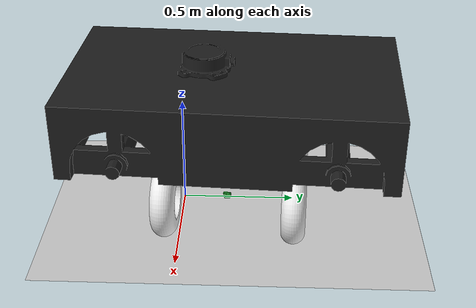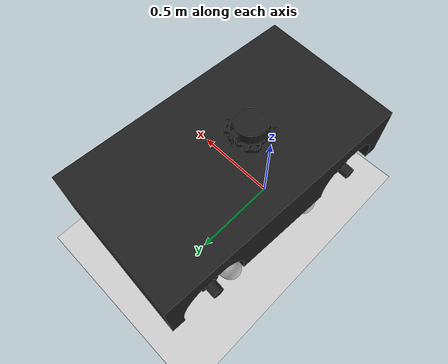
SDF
<sdf version="1.6">
 <world name="default">
  <scene><ambient>0.4 0.4 0.4 1</ambient><background>0.7 0.7 0.7 1</background><shadows>1</shadows></scene>
  <model name="ground_plane">
   <static>1</static>
   <link name="link">
    <collision name="collision">
     <geometry><plane><normal>0 0 1</normal><size>100 100</size></plane></geometry>
     <surface><friction><ode><mu>100</mu><mu2>50</mu2></ode></friction></surface>
    </collision>
    <visual name="visual">
     <cast_shadows>0</cast_shadows>
     <geometry><plane><normal>0 0 1</normal><size>100 100</size></plane></geometry>
     <material>
      <script><uri>file://media/materials/scripts/gazebo.material</uri><name>Gazebo/Grey</name></script>
     </material>
    </visual>
   </link>
  </model>
  <physics name="default_physics" default="0" type="ode">
   <real_time_update_rate>1000</real_time_update_rate>
   <max_step_size>0.001</max_step_size>
   <real_time_factor>1</real_time_factor>
   <ode>
    <solver>
     <type>quick</type>
     <iters>150</iters>
     <precon_iters>0</precon_iters>
     <sor>1.4</sor>
     <use_dynamic_moi_rescaling>1</use_dynamic_moi_rescaling>
    </solver>
    <constraints>
     <cfm>1e-05</cfm>
     <erp>0.2</erp>
     <contact_max_correcting_vel>2000</contact_max_correcting_vel>
     <contact_surface_layer>0.01</contact_surface_layer>
    </constraints>
   </ode>
  </physics>
  <gravity>0 0 -9.8</gravity>
  <magnetic_field>6e-06 2.3e-05 -4.2e-05</magnetic_field>
  <atmosphere type="adiabatic"/>
  <spherical_coordinates>
   <surface_model>EARTH_WGS84</surface_model>
   <latitude_deg>0</latitude_deg>
   <longitude_deg>0</longitude_deg>
   <elevation>0</elevation>
   <heading_deg>0</heading_deg>
  </spherical_coordinates>
  <model name="kepdos">
   <link name="base_link">
    <inertial>
     <pose>0.004374 2.1e-05 -0.021524 0 -0 0</pose>
     <mass>20.8082</mass>
     <inertia>
      <ixx>0.0520942</ixx>
      <ixy>-0.00152807</ixy>
      <ixz>-0.0193073</ixz>
      <iyy>0.0996641</iyy>
      <iyz>-1.8125e-06</iyz>
      <izz>0.104279</izz>
     </inertia>
    </inertial>
    <collision name="base_link_collision">
     <geometry>
      <mesh>
       <scale>1 1 1</scale>
       <uri>/home/kepas/kepdos_robot/src/robot_description/meshes/base_link.STL</uri>
      </mesh>
     </geometry>
    </collision>
    <collision name="base_link_fixed_joint_lump__camera_link_collision_1">
     <pose>0.3121 0 0.00895 0 -0 0</pose>
     <geometry>
      <mesh>
       <scale>1 1 1</scale>
       <uri>/home/kepas/kepdos_robot/src/robot_description/meshes/camera_link.STL</uri>
      </mesh>
     </geometry>
    </collision>
    <collision name="base_link_fixed_joint_lump__imu_link_collision_2">
     <geometry>
      <mesh><scale>1 1 1</scale><uri>/home/kepas/kepdos_robot/src/robot_description/meshes/imu_link.STL</uri></mesh>
     </geometry>
    </collision>
    <collision name="base_link_fixed_joint_lump__kinect_link_collision_3">
     <pose>0.21125 0 0.12827 0 -0 0</pose>
     <geometry>
      <mesh>
       <scale>1 1 1</scale>
       <uri>/home/kepas/kepdos_robot/src/robot_description/meshes/kinect_link.STL</uri>
      </mesh>
     </geometry>
    </collision>
    <collision name="base_link_fixed_joint_lump__lidar_link_collision_4">
     <pose>-0.0445 0 0.16575 0 -0 0</pose>
     <geometry>
      <mesh>
       <scale>1 1 1</scale>
       <uri>/home/kepas/kepdos_robot/src/robot_description/meshes/lidar_link.STL</uri>
      </mesh>
     </geometry>
    </collision>
    <visual name="base_link_visual">
     <geometry>
      <mesh>
       <scale>1 1 1</scale>
       <uri>/home/kepas/kepdos_robot/src/robot_description/meshes/base_link.STL</uri>
      </mesh>
     </geometry>
     <material>
      <script><name>Gazebo/Black</name><uri>file://media/materials/scripts/gazebo.material</uri></script>
     </material>
    </visual>
    <visual name="base_link_fixed_joint_lump__camera_link_visual_1">
     <pose>0.3121 0 0.00895 0 -0 0</pose>
     <geometry>
      <mesh>
       <scale>1 1 1</scale>
       <uri>/home/kepas/kepdos_robot/src/robot_description/meshes/camera_link.STL</uri>
      </mesh>
     </geometry>
     <material>
      <script><name>Gazebo/Green</name><uri>file://media/materials/scripts/gazebo.material</uri></script>
     </material>
    </visual>
    <visual name="base_link_fixed_joint_lump__imu_link_visual_2">
     <geometry>
      <mesh><scale>1 1 1</scale><uri>/home/kepas/kepdos_robot/src/robot_description/meshes/imu_link.STL</uri></mesh>
     </geometry>
     <material><script><uri>__default__</uri><name>__default__</name></script></material>
    </visual>
    <visual name="base_link_fixed_joint_lump__kinect_link_visual_3">
     <pose>0.21125 0 0.12827 0 -0 0</pose>
     <geometry>
      <mesh>
       <scale>1 1 1</scale>
       <uri>/home/kepas/kepdos_robot/src/robot_description/meshes/kinect_link.STL</uri>
      </mesh>
     </geometry>
     <material>
      <script><name>Gazebo/Grey</name><uri>file://media/materials/scripts/gazebo.material</uri></script>
     </material>
    </visual>
    <visual name="base_link_fixed_joint_lump__lidar_link_visual_4">
     <pose>-0.0445 0 0.16575 0 -0 0</pose>
     <geometry>
      <mesh>
       <scale>1 1 1</scale>
       <uri>/home/kepas/kepdos_robot/src/robot_description/meshes/lidar_link.STL</uri>
      </mesh>
     </geometry>
     <material>
      <script><name>Gazebo/Blue</name><uri>file://media/materials/scripts/gazebo.material</uri></script>
     </material>
    </visual>
    <sensor name="camera1" type="camera">
     <update_rate>30</update_rate>
     <camera name="head">
      <horizontal_fov>1.39626</horizontal_fov>
      <image><width>800</width><height>800</height><format>R8G8B8</format></image>
      <clip><near>0.02</near><far>300</far></clip>
      <noise><type>gaussian</type><mean>0</mean><stddev>0.007</stddev></noise>
     </camera>
     <plugin name="camera_controller" filename="libgazebo_ros_camera.so">
      <alwaysOn>true</alwaysOn>
      <updateRate>0.0</updateRate>
      <cameraName>kepdos/camera1</cameraName>
      <imageTopicName>image_raw</imageTopicName>
      <cameraInfoTopicName>camera_info</cameraInfoTopicName>
      <frameName>camera_link</frameName>
      <hackBaseline>0.07</hackBaseline>
      <distortionK1>0.0</distortionK1>
      <distortionK2>0.0</distortionK2>
      <distortionK3>0.0</distortionK3>
      <distortionT1>0.0</distortionT1>
      <distortionT2>0.0</distortionT2>
      <robotNamespace>/</robotNamespace>
     </plugin>
     <pose>0.3121 0 0.00895 0 -0 0</pose>
    </sensor>
    <sensor name="imu_sensor" type="imu">
     <always_on>1</always_on>
     <update_rate>100</update_rate>
     <visualize>1</visualize>
     <topic>__default_topic__</topic>
     <plugin name="imu_plugin" filename="libgazebo_ros_imu_sensor.so">
      <topicName>imu</topicName>
      <bodyName>imu_link</bodyName>
      <updateRateHZ>10.0</updateRateHZ>
      <gaussianNoise>0.0</gaussianNoise>
      <xyzOffset>0 0 0</xyzOffset>
      <rpyOffset>0 0 0</rpyOffset>
      <frameName>imu_link</frameName>
      <initialOrientationAsReference>false</initialOrientationAsReference>
      <robotNamespace>/</robotNamespace>
     </plugin>
    </sensor>
    <sensor name="camera" type="depth">
     <always_on>1</always_on>
     <update_rate>30</update_rate>
     <camera name="__default__">
      <horizontal_fov>1.0472</horizontal_fov>
      <image><format>B8G8R8</format><width>640</width><height>480</height></image>
      <clip><near>0.05</near><far>8</far></clip>
     </camera>
     <plugin name="kinect_camera_controller" filename="libgazebo_ros_openni_kinect.so">
      <cameraName>camera</cameraName>
      <alwaysOn>true</alwaysOn>
      <updateRate>10</updateRate>
      <imageTopicName>rgb/image_raw</imageTopicName>
      <depthImageTopicName>depth/image_raw</depthImageTopicName>
      <pointCloudTopicName>depth/points</pointCloudTopicName>
      <cameraInfoTopicName>rgb/camera_info</cameraInfoTopicName>
      <depthImageCameraInfoTopicName>depth/camera_info</depthImageCameraInfoTopicName>
      <frameName>kinect_link</frameName>
      <baseline>0.1</baseline>
      <distortion_k1>0.0</distortion_k1>
      <distortion_k2>0.0</distortion_k2>
      <distortion_k3>0.0</distortion_k3>
      <distortion_t1>0.0</distortion_t1>
      <distortion_t2>0.0</distortion_t2>
      <pointCloudCutoff>0.4</pointCloudCutoff>
      <robotNamespace>/</robotNamespace>
     </plugin>
     <pose>0.21125 0 0.12827 0 -0 0</pose>
    </sensor>
    <sensor name="head_rplidar_sensor" type="ray">
     <visualize>0</visualize>
     <update_rate>40</update_rate>
     <ray>
      <scan>
       <horizontal>
        <samples>720</samples>
        <resolution>1</resolution>
        <min_angle>-3.14159</min_angle>
        <max_angle>3.14159</max_angle>
       </horizontal>
       <vertical><samples>1</samples><min_angle>0</min_angle><max_angle>0</max_angle></vertical>
      </scan>
      <range><min>0.2</min><max>12</max><resolution>0.01</resolution></range>
      <noise><type>gaussian</type><mean>0</mean><stddev>0.01</stddev></noise>
     </ray>
     <plugin name="gazebo_ros_head_rplidar_controller" filename="libgazebo_ros_laser.so">
      <topicName>scan</topicName>
      <frameName>lidar_link</frameName>
      <robotNamespace>/</robotNamespace>
     </plugin>
     <pose>-0.0445 0 0.16575 0 -0 0</pose>
    </sensor>
   </link>
   <link name="left_front_wheel">
    <pose>0.21 0.2265 -0.089008 0 -0 0</pose>
    <inertial>
     <pose>0 0.05125 0 0 -0 0</pose>
     <mass>3</mass>
     <inertia>
      <ixx>0.047709</ixx>
      <ixy>-3.9925e-20</ixy>
      <ixz>7.7645e-19</ixz>
      <iyy>0.087893</iyy>
      <iyz>-1.6815e-17</iyz>
      <izz>0.047709</izz>
     </inertia>
    </inertial>
    <collision name="left_front_wheel_collision">
     <geometry>
      <mesh>
       <scale>1 1 1</scale>
       <uri>/home/kepas/kepdos_robot/src/robot_description/meshes/left_front_wheel.STL</uri>
      </mesh>
     </geometry>
     <surface><friction><ode><mu>0.2</mu><mu2>0.3</mu2></ode></friction></surface>
    </collision>
    <visual name="left_front_wheel_visual">
     <geometry>
      <mesh>
       <scale>1 1 1</scale>
       <uri>/home/kepas/kepdos_robot/src/robot_description/meshes/left_front_wheel.STL</uri>
      </mesh>
     </geometry>
     <material>
      <script><name>Gazebo/White</name><uri>file://media/materials/scripts/gazebo.material</uri></script>
     </material>
    </visual>
   </link>
   <joint name="left_front_wheel_joint" type="revolute">
    <child>left_front_wheel</child>
    <parent>base_link</parent>
    <axis>
     <xyz>0 -1 0</xyz>
     <limit><lower>-1e+16</lower><upper>1e+16</upper></limit>
     <dynamics><spring_reference>0</spring_reference><spring_stiffness>0</spring_stiffness></dynamics>
     <use_parent_model_frame>1</use_parent_model_frame>
    </axis>
   </joint>
   <link name="left_rear_wheel">
    <pose>-0.21 0.2265 -0.089 0 -0 0</pose>
    <inertial>
     <pose>0 0.05125 -0 0 -0 0</pose>
     <mass>3</mass>
     <inertia>
      <ixx>0.047709</ixx>
      <ixy>6.6234e-18</ixy>
      <ixz>-4.9623e-18</ixz>
      <iyy>0.087893</iyy>
      <iyz>-7.8363e-18</iyz>
      <izz>0.047709</izz>
     </inertia>
    </inertial>
    <collision name="left_rear_wheel_collision">
     <geometry>
      <mesh>
       <scale>1 1 1</scale>
       <uri>/home/kepas/kepdos_robot/src/robot_description/meshes/left_rear_wheel.STL</uri>
      </mesh>
     </geometry>
     <surface><friction><ode><mu>0.2</mu><mu2>0.3</mu2></ode></friction></surface>
    </collision>
    <visual name="left_rear_wheel_visual">
     <geometry>
      <mesh>
       <scale>1 1 1</scale>
       <uri>/home/kepas/kepdos_robot/src/robot_description/meshes/left_rear_wheel.STL</uri>
      </mesh>
     </geometry>
     <material>
      <script><name>Gazebo/White</name><uri>file://media/materials/scripts/gazebo.material</uri></script>
     </material>
    </visual>
   </link>
   <joint name="left_rear_wheel_joint" type="revolute">
    <child>left_rear_wheel</child>
    <parent>base_link</parent>
    <axis>
     <xyz>0 -1 0</xyz>
     <limit><lower>-1e+16</lower><upper>1e+16</upper></limit>
     <dynamics><spring_reference>0</spring_reference><spring_stiffness>0</spring_stiffness></dynamics>
     <use_parent_model_frame>1</use_parent_model_frame>
    </axis>
   </joint>
   <link name="right_front_wheel">
    <pose>0.21 -0.2265 -0.089008 0 -0 0</pose>
    <inertial>
     <pose>-0 -0.05125 0 0 -0 0</pose>
     <mass>3</mass>
     <inertia>
      <ixx>0.047709</ixx>
      <ixy>9.1909e-18</ixy>
      <ixz>-1.4307e-19</ixz>
      <iyy>0.087893</iyy>
      <iyz>-4.6646e-18</iyz>
      <izz>0.047709</izz>
     </inertia>
    </inertial>
    <collision name="right_front_wheel_collision">
     <geometry>
      <mesh>
       <scale>1 1 1</scale>
       <uri>/home/kepas/kepdos_robot/src/robot_description/meshes/right_front_wheel.STL</uri>
      </mesh>
     </geometry>
     <surface><friction><ode><mu>0.2</mu><mu2>0.3</mu2></ode></friction></surface>
    </collision>
    <visual name="right_front_wheel_visual">
     <geometry>
      <mesh>
       <scale>1 1 1</scale>
       <uri>/home/kepas/kepdos_robot/src/robot_description/meshes/right_front_wheel.STL</uri>
      </mesh>
     </geometry>
     <material>
      <script><name>Gazebo/White</name><uri>file://media/materials/scripts/gazebo.material</uri></script>
     </material>
    </visual>
   </link>
   <joint name="right_front_wheel_joint" type="revolute">
    <child>right_front_wheel</child>
    <parent>base_link</parent>
    <axis>
     <xyz>0 1 0</xyz>
     <limit><lower>-1e+16</lower><upper>1e+16</upper></limit>
     <dynamics><spring_reference>0</spring_reference><spring_stiffness>0</spring_stiffness></dynamics>
     <use_parent_model_frame>1</use_parent_model_frame>
    </axis>
   </joint>
   <link name="right_rear_wheel">
    <pose>-0.21 -0.2265 -0.089 0 -0 0</pose>
    <inertial>
     <pose>0 -0.05125 0 0 -0 0</pose>
     <mass>3</mass>
     <inertia>
      <ixx>0.047709</ixx>
      <ixy>6.9064e-18</ixy>
      <ixz>4.2983e-19</ixz>
      <iyy>0.087893</iyy>
      <iyz>-4.4799e-18</iyz>
      <izz>0.047709</izz>
     </inertia>
    </inertial>
    <collision name="right_rear_wheel_collision">
     <geometry>
      <mesh>
       <scale>1 1 1</scale>
       <uri>/home/kepas/kepdos_robot/src/robot_description/meshes/right_rear_wheel.STL</uri>
      </mesh>
     </geometry>
     <surface><friction><ode><mu>0.2</mu><mu2>0.3</mu2></ode></friction></surface>
    </collision>
    <visual name="right_rear_wheel_visual">
     <geometry>
      <mesh>
       <scale>1 1 1</scale>
       <uri>/home/kepas/kepdos_robot/src/robot_description/meshes/right_rear_wheel.STL</uri>
      </mesh>
     </geometry>
     <material>
      <script><name>Gazebo/White</name><uri>file://media/materials/scripts/gazebo.material</uri></script>
     </material>
    </visual>
   </link>
   <joint name="right_rear_wheel_joint" type="revolute">
    <child>right_rear_wheel</child>
    <parent>base_link</parent>
    <axis>
     <xyz>0 1 0</xyz>
     <limit><lower>-1e+16</lower><upper>1e+16</upper></limit>
     <dynamics><spring_reference>0</spring_reference><spring_stiffness>0</spring_stiffness></dynamics>
     <use_parent_model_frame>1</use_parent_model_frame>
    </axis>
   </joint>
   <static>0</static>
   <plugin name="differential_drive_controller" filename="libgazebo_ros_diff_drive.so">
    <updateRate>10</updateRate>
    <leftJoint>left_rear_wheel_joint</leftJoint>
    <rightJoint>right_rear_wheel_joint</rightJoint>
    <wheelSeparation>0.5530</wheelSeparation>
    <wheelDiameter>0.2750</wheelDiameter>
    <wheelAcceleration>1.0</wheelAcceleration>
    <wheelTorque>20</wheelTorque>
    <commandTopic>cmd_vel</commandTopic>
    <odometryTopic>odom</odometryTopic>
    <odometryFrame>odom</odometryFrame>
    <robotBaseFrame>base_link</robotBaseFrame>
    <odometrySource>1</odometrySource>
    <publishWheelTF>true</publishWheelTF>
    <publishOdom>true</publishOdom>
    <publishWheelJointState>true</publishWheelJointState>
    <legacyMode>false</legacyMode>
    <robotNamespace>/</robotNamespace>
   </plugin>
   <pose>0.072188 0.231366 0.253511 -3.3e-05 0.000156 -0.053271</pose>
  </model>
 </world>
</sdf>
